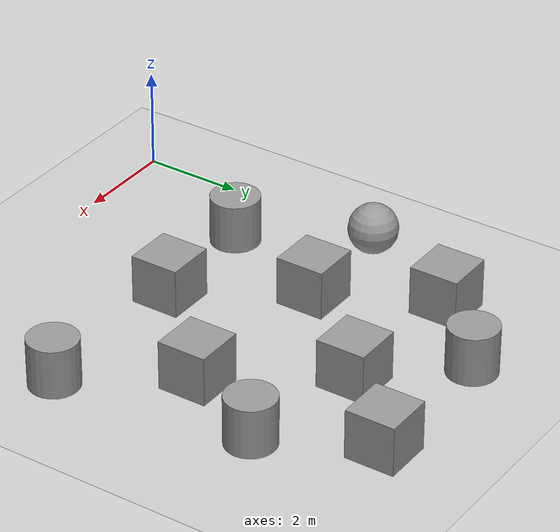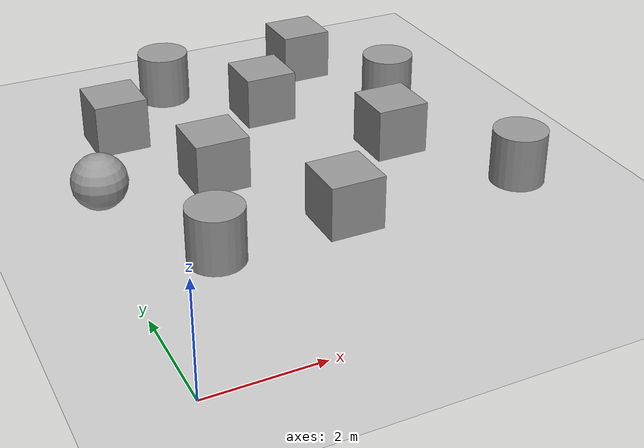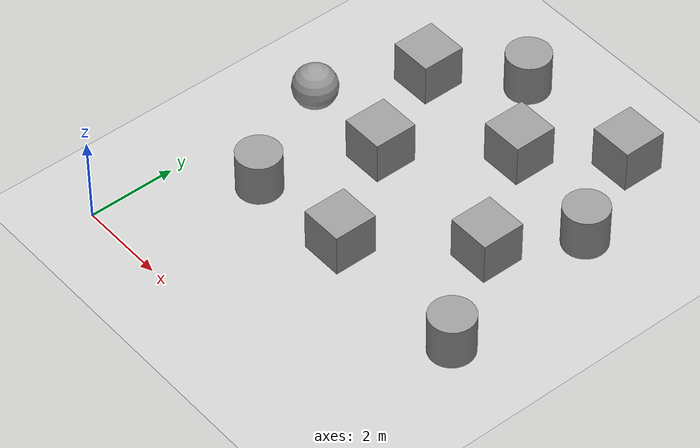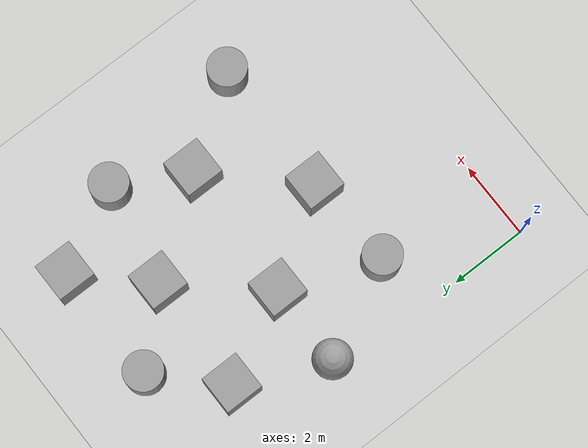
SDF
<sdf version="1.7">
 <world name="default">
  <light name="sun" type="directional">
   <pose>0 0 10 0 -0 0</pose>
   <diffuse>0.8 0.8 0.8 1</diffuse>
   <specular>0.2 0.2 0.2 1</specular>
   <attenuation>
    <range>1000</range>
    <constant>0.9</constant>
    <linear>0.01</linear>
    <quadratic>0.001</quadratic>
   </attenuation>
   <direction>-0.5 0.1 -0.9</direction>
   <spot><inner_angle>0</inner_angle><outer_angle>0</outer_angle><falloff>0</falloff></spot>
  </light>
  <model name="ground_plane">
   <static>1</static>
   <link name="link">
    <collision name="collision">
     <geometry><plane><normal>0 0 1</normal><size>100 100</size></plane></geometry>
     <surface>
      <contact><collide_bitmask>65535</collide_bitmask></contact>
      <friction><ode><mu>100</mu><mu2>50</mu2></ode></friction>
     </surface>
    </collision>
    <visual name="visual">
     <cast_shadows>0</cast_shadows>
     <geometry><plane><normal>0 0 1</normal><size>100 100</size></plane></geometry>
     <material>
      <script><uri>file://media/materials/scripts/gazebo.material</uri><name>Gazebo/Grey</name></script>
     </material>
    </visual>
   </link>
  </model>
  <gravity>0 0 -9.8</gravity>
  <magnetic_field>6e-06 2.3e-05 -4.2e-05</magnetic_field>
  <atmosphere type="adiabatic"/>
  <physics type="ode">
   <max_step_size>0.001</max_step_size>
   <real_time_factor>1</real_time_factor>
   <real_time_update_rate>1000</real_time_update_rate>
  </physics>
  <scene><ambient>0.4 0.4 0.4 1</ambient><background>0.7 0.7 0.7 1</background><shadows>1</shadows></scene>
  <audio><device>default</device></audio>
  <spherical_coordinates>
   <surface_model>EARTH_WGS84</surface_model>
   <latitude_deg>0</latitude_deg>
   <longitude_deg>0</longitude_deg>
   <elevation>0</elevation>
   <heading_deg>0</heading_deg>
  </spherical_coordinates>
  <model name="unit_box">
   <pose>4.31829 7.63192 0.5 -0 -0 -3e-06</pose>
   <link name="link">
    <inertial>
     <mass>1</mass>
     <inertia>
      <ixx>0.166667</ixx>
      <ixy>0</ixy>
      <ixz>0</ixz>
      <iyy>0.166667</iyy>
      <iyz>0</iyz>
      <izz>0.166667</izz>
     </inertia>
    </inertial>
    <collision name="collision"><geometry><box><size>1 1 1</size></box></geometry></collision>
    <visual name="visual">
     <geometry><box><size>1 1 1</size></box></geometry>
     <material>
      <script><name>Gazebo/Grey</name><uri>file://media/materials/scripts/gazebo.material</uri></script>
     </material>
    </visual>
   </link>
  </model>
  <model name="unit_box_0">
   <pose>2.44691 5.51606 0.5 0 0 -3e-06</pose>
   <link name="link">
    <inertial>
     <mass>1</mass>
     <inertia>
      <ixx>0.166667</ixx>
      <ixy>0</ixy>
      <ixz>0</ixz>
      <iyy>0.166667</iyy>
      <iyz>0</iyz>
      <izz>0.166667</izz>
     </inertia>
    </inertial>
    <collision name="collision"><geometry><box><size>1 1 1</size></box></geometry></collision>
    <visual name="visual">
     <geometry><box><size>1 1 1</size></box></geometry>
     <material>
      <script><name>Gazebo/Grey</name><uri>file://media/materials/scripts/gazebo.material</uri></script>
     </material>
    </visual>
   </link>
  </model>
  <model name="unit_box_1">
   <pose>5.95534 5.33484 0.5 0 -0 0</pose>
   <link name="link">
    <inertial>
     <mass>1</mass>
     <inertia>
      <ixx>0.166667</ixx>
      <ixy>0</ixy>
      <ixz>0</ixz>
      <iyy>0.166667</iyy>
      <iyz>0</iyz>
      <izz>0.166667</izz>
     </inertia>
    </inertial>
    <collision name="collision"><geometry><box><size>1 1 1</size></box></geometry></collision>
    <visual name="visual">
     <geometry><box><size>1 1 1</size></box></geometry>
     <material>
      <script><name>Gazebo/Grey</name><uri>file://media/materials/scripts/gazebo.material</uri></script>
     </material>
    </visual>
   </link>
  </model>
  <model name="unit_box_2">
   <pose>3.92062 3.25112 0.5 0 -0 0</pose>
   <link name="link">
    <inertial>
     <mass>1</mass>
     <inertia>
      <ixx>0.166667</ixx>
      <ixy>0</ixy>
      <ixz>0</ixz>
      <iyy>0.166667</iyy>
      <iyz>0</iyz>
      <izz>0.166667</izz>
     </inertia>
    </inertial>
    <collision name="collision"><geometry><box><size>1 1 1</size></box></geometry></collision>
    <visual name="visual">
     <geometry><box><size>1 1 1</size></box></geometry>
     <material>
      <script><name>Gazebo/Grey</name><uri>file://media/materials/scripts/gazebo.material</uri></script>
     </material>
    </visual>
   </link>
  </model>
  <model name="unit_box_3">
   <pose>1.32802 7.74425 0.5 0 -0 0</pose>
   <link name="link">
    <inertial>
     <mass>1</mass>
     <inertia>
      <ixx>0.166667</ixx>
      <ixy>0</ixy>
      <ixz>0</ixz>
      <iyy>0.166667</iyy>
      <iyz>0</iyz>
      <izz>0.166667</izz>
     </inertia>
    </inertial>
    <collision name="collision"><geometry><box><size>1 1 1</size></box></geometry></collision>
    <visual name="visual">
     <geometry><box><size>1 1 1</size></box></geometry>
     <material>
      <script><name>Gazebo/Grey</name><uri>file://media/materials/scripts/gazebo.material</uri></script>
     </material>
    </visual>
   </link>
  </model>
  <model name="unit_cylinder">
   <pose>6.88677 7.13571 0.5 0 -0 0</pose>
   <link name="link">
    <inertial>
     <mass>1</mass>
     <inertia><ixx>0.145833</ixx><ixy>0</ixy><ixz>0</ixz><iyy>0.145833</iyy><iyz>0</iyz><izz>0.125</izz></inertia>
    </inertial>
    <collision name="collision">
     <geometry><cylinder><radius>0.5</radius><length>1</length></cylinder></geometry>
    </collision>
    <visual name="visual">
     <geometry><cylinder><radius>0.5</radius><length>1</length></cylinder></geometry>
     <material>
      <script><name>Gazebo/Grey</name><uri>file://media/materials/scripts/gazebo.material</uri></script>
     </material>
    </visual>
   </link>
  </model>
  <model name="unit_cylinder_0">
   <pose>1.5292 3.09318 0.5 0 -0 0</pose>
   <link name="link">
    <inertial>
     <mass>1</mass>
     <inertia><ixx>0.145833</ixx><ixy>0</ixy><ixz>0</ixz><iyy>0.145833</iyy><iyz>0</iyz><izz>0.125</izz></inertia>
    </inertial>
    <collision name="collision">
     <geometry><cylinder><radius>0.5</radius><length>1</length></cylinder></geometry>
    </collision>
    <visual name="visual">
     <geometry><cylinder><radius>0.5</radius><length>1</length></cylinder></geometry>
     <material>
      <script><name>Gazebo/Grey</name><uri>file://media/materials/scripts/gazebo.material</uri></script>
     </material>
    </visual>
   </link>
  </model>
  <model name="unit_sphere">
   <pose>0.348805 5.50824 0.5 0 -0 0</pose>
   <link name="link">
    <inertial>
     <mass>1</mass>
     <inertia><ixx>0.1</ixx><ixy>0</ixy><ixz>0</ixz><iyy>0.1</iyy><iyz>0</iyz><izz>0.1</izz></inertia>
    </inertial>
    <collision name="collision"><geometry><sphere><radius>0.5</radius></sphere></geometry></collision>
    <visual name="visual">
     <geometry><sphere><radius>0.5</radius></sphere></geometry>
     <material>
      <script><name>Gazebo/Grey</name><uri>file://media/materials/scripts/gazebo.material</uri></script>
     </material>
    </visual>
   </link>
  </model>
  <model name="unit_cylinder_1">
   <pose>7.39012 3.19739 0.5 0 -0 0</pose>
   <link name="link">
    <inertial>
     <mass>1</mass>
     <inertia><ixx>0.145833</ixx><ixy>0</ixy><ixz>0</ixz><iyy>0.145833</iyy><iyz>0</iyz><izz>0.125</izz></inertia>
    </inertial>
    <collision name="collision">
     <geometry><cylinder><radius>0.5</radius><length>1</length></cylinder></geometry>
    </collision>
    <visual name="visual">
     <geometry><cylinder><radius>0.5</radius><length>1</length></cylinder></geometry>
     <material>
      <script><name>Gazebo/Grey</name><uri>file://media/materials/scripts/gazebo.material</uri></script>
     </material>
    </visual>
   </link>
  </model>
  <model name="unit_box_4">
   <pose>5.84248 9.22519 0.5 0 -0 0</pose>
   <link name="link">
    <inertial>
     <mass>1</mass>
     <inertia>
      <ixx>0.166667</ixx>
      <ixy>0</ixy>
      <ixz>0</ixz>
      <iyy>0.166667</iyy>
      <iyz>0</iyz>
      <izz>0.166667</izz>
     </inertia>
    </inertial>
    <collision name="collision"><geometry><box><size>1 1 1</size></box></geometry></collision>
    <visual name="visual">
     <geometry><box><size>1 1 1</size></box></geometry>
     <material>
      <script><name>Gazebo/Grey</name><uri>file://media/materials/scripts/gazebo.material</uri></script>
     </material>
    </visual>
   </link>
  </model>
  <model name="unit_cylinder_2">
   <pose>2.81956 9.20353 0.5 0 -0 0</pose>
   <link name="link">
    <inertial>
     <mass>1</mass>
     <inertia><ixx>0.145833</ixx><ixy>0</ixy><ixz>0</ixz><iyy>0.145833</iyy><iyz>0</iyz><izz>0.125</izz></inertia>
    </inertial>
    <collision name="collision">
     <geometry><cylinder><radius>0.5</radius><length>1</length></cylinder></geometry>
    </collision>
    <visual name="visual">
     <geometry><cylinder><radius>0.5</radius><length>1</length></cylinder></geometry>
     <material>
      <script><name>Gazebo/Grey</name><uri>file://media/materials/scripts/gazebo.material</uri></script>
     </material>
    </visual>
   </link>
  </model>
 </world>
</sdf>
